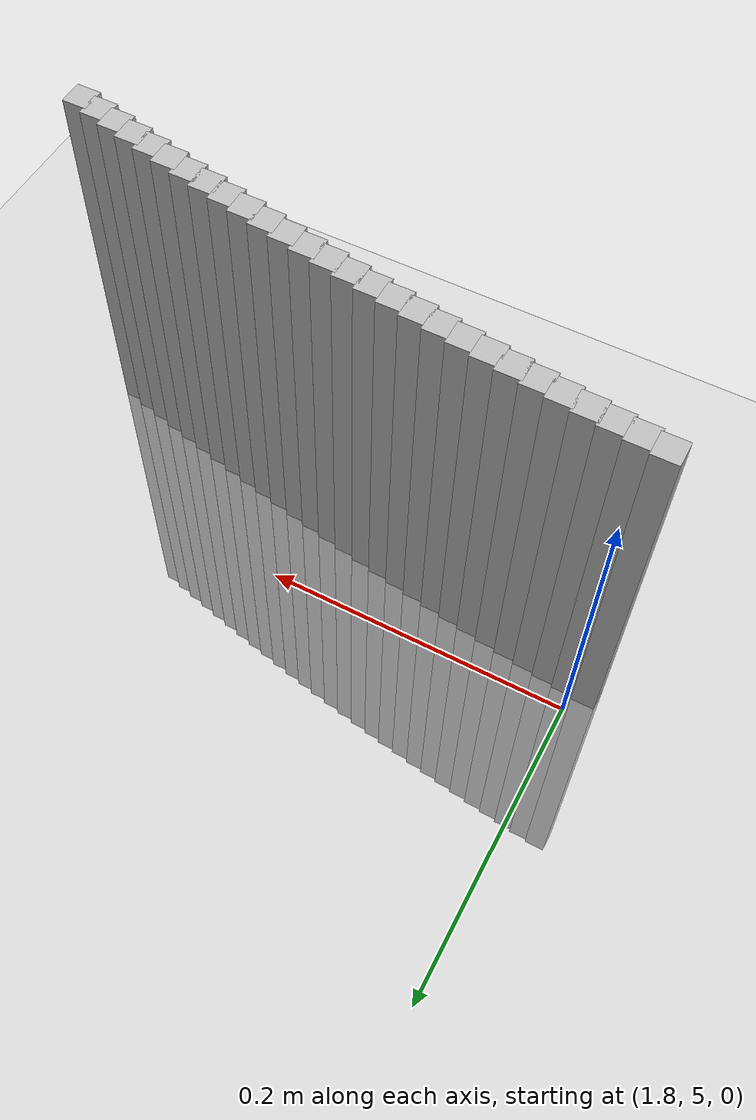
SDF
<sdf version="1.6">
 <world name="base">
  <model name="ground_plane">
   <static>1</static>
   <link name="link">
    <collision name="collision">
     <geometry><plane><normal>0 0 1</normal><size>100 100</size></plane></geometry>
     <surface>
      <contact><collide_bitmask>65535</collide_bitmask></contact>
      <friction><ode><mu>100</mu><mu2>50</mu2></ode></friction>
     </surface>
    </collision>
    <visual name="visual">
     <cast_shadows>0</cast_shadows>
     <geometry><plane><normal>0 0 1</normal><size>100 100</size></plane></geometry>
     <material>
      <script><uri>file://media/materials/scripts/gazebo.material</uri><name>Gazebo/Grey</name></script>
     </material>
    </visual>
   </link>
  </model>
  <model name="k404">
   <link name="29_link">
    <collision name="collision_29">
     <pose>1.791 4.98301 0 0 -0 0</pose>
     <geometry><box><size>0.015 0.015 0.5</size></box></geometry>
    </collision>
    <visual name="visual_29">
     <pose>1.791 4.98301 0 0 -0 0</pose>
     <geometry><box><size>0.015 0.015 0.5</size></box></geometry>
    </visual>
   </link>
   <link name="30_link">
    <collision name="collision_30">
     <pose>1.80479 4.98135 0 0 -0 0</pose>
     <geometry><box><size>0.015 0.015 0.5</size></box></geometry>
    </collision>
    <visual name="visual_30">
     <pose>1.80479 4.98135 0 0 -0 0</pose>
     <geometry><box><size>0.015 0.015 0.5</size></box></geometry>
    </visual>
   </link>
   <link name="31_link">
    <collision name="collision_31">
     <pose>1.81858 4.97962 0 0 -0 0</pose>
     <geometry><box><size>0.015 0.015 0.5</size></box></geometry>
    </collision>
    <visual name="visual_31">
     <pose>1.81858 4.97962 0 0 -0 0</pose>
     <geometry><box><size>0.015 0.015 0.5</size></box></geometry>
    </visual>
   </link>
   <link name="32_link">
    <collision name="collision_32">
     <pose>1.83235 4.97781 0 0 -0 0</pose>
     <geometry><box><size>0.015 0.015 0.5</size></box></geometry>
    </collision>
    <visual name="visual_32">
     <pose>1.83235 4.97781 0 0 -0 0</pose>
     <geometry><box><size>0.015 0.015 0.5</size></box></geometry>
    </visual>
   </link>
   <link name="33_link">
    <collision name="collision_33">
     <pose>1.84611 4.97593 0 0 -0 0</pose>
     <geometry><box><size>0.015 0.015 0.5</size></box></geometry>
    </collision>
    <visual name="visual_33">
     <pose>1.84611 4.97593 0 0 -0 0</pose>
     <geometry><box><size>0.015 0.015 0.5</size></box></geometry>
    </visual>
   </link>
   <link name="34_link">
    <collision name="collision_34">
     <pose>1.85986 4.97396 0 0 -0 0</pose>
     <geometry><box><size>0.015 0.015 0.5</size></box></geometry>
    </collision>
    <visual name="visual_34">
     <pose>1.85986 4.97396 0 0 -0 0</pose>
     <geometry><box><size>0.015 0.015 0.5</size></box></geometry>
    </visual>
   </link>
   <link name="35_link">
    <collision name="collision_35">
     <pose>1.87359 4.97193 0 0 -0 0</pose>
     <geometry><box><size>0.015 0.015 0.5</size></box></geometry>
    </collision>
    <visual name="visual_35">
     <pose>1.87359 4.97193 0 0 -0 0</pose>
     <geometry><box><size>0.015 0.015 0.5</size></box></geometry>
    </visual>
   </link>
   <link name="36_link">
    <collision name="collision_36">
     <pose>1.88732 4.96981 0 0 -0 0</pose>
     <geometry><box><size>0.015 0.015 0.5</size></box></geometry>
    </collision>
    <visual name="visual_36">
     <pose>1.88732 4.96981 0 0 -0 0</pose>
     <geometry><box><size>0.015 0.015 0.5</size></box></geometry>
    </visual>
   </link>
   <link name="37_link">
    <collision name="collision_37">
     <pose>1.90104 4.96762 0 0 -0 0</pose>
     <geometry><box><size>0.015 0.015 0.5</size></box></geometry>
    </collision>
    <visual name="visual_37">
     <pose>1.90104 4.96762 0 0 -0 0</pose>
     <geometry><box><size>0.015 0.015 0.5</size></box></geometry>
    </visual>
   </link>
   <link name="38_link">
    <collision name="collision_38">
     <pose>1.91474 4.96536 0 0 -0 0</pose>
     <geometry><box><size>0.015 0.015 0.5</size></box></geometry>
    </collision>
    <visual name="visual_38">
     <pose>1.91474 4.96536 0 0 -0 0</pose>
     <geometry><box><size>0.015 0.015 0.5</size></box></geometry>
    </visual>
   </link>
   <link name="39_link">
    <collision name="collision_39">
     <pose>1.92843 4.96302 0 0 -0 0</pose>
     <geometry><box><size>0.015 0.015 0.5</size></box></geometry>
    </collision>
    <visual name="visual_39">
     <pose>1.92843 4.96302 0 0 -0 0</pose>
     <geometry><box><size>0.015 0.015 0.5</size></box></geometry>
    </visual>
   </link>
   <link name="40_link">
    <collision name="collision_40">
     <pose>1.94211 4.9606 0 0 -0 0</pose>
     <geometry><box><size>0.015 0.015 0.5</size></box></geometry>
    </collision>
    <visual name="visual_40">
     <pose>1.94211 4.9606 0 0 -0 0</pose>
     <geometry><box><size>0.015 0.015 0.5</size></box></geometry>
    </visual>
   </link>
   <link name="41_link">
    <collision name="collision_41">
     <pose>1.95577 4.9581 0 0 -0 0</pose>
     <geometry><box><size>0.015 0.015 0.5</size></box></geometry>
    </collision>
    <visual name="visual_41">
     <pose>1.95577 4.9581 0 0 -0 0</pose>
     <geometry><box><size>0.015 0.015 0.5</size></box></geometry>
    </visual>
   </link>
   <link name="42_link">
    <collision name="collision_42">
     <pose>1.96942 4.95553 0 0 -0 0</pose>
     <geometry><box><size>0.015 0.015 0.5</size></box></geometry>
    </collision>
    <visual name="visual_42">
     <pose>1.96942 4.95553 0 0 -0 0</pose>
     <geometry><box><size>0.015 0.015 0.5</size></box></geometry>
    </visual>
   </link>
   <link name="43_link">
    <collision name="collision_43">
     <pose>1.98305 4.95289 0 0 -0 0</pose>
     <geometry><box><size>0.015 0.015 0.5</size></box></geometry>
    </collision>
    <visual name="visual_43">
     <pose>1.98305 4.95289 0 0 -0 0</pose>
     <geometry><box><size>0.015 0.015 0.5</size></box></geometry>
    </visual>
   </link>
   <link name="44_link">
    <collision name="collision_44">
     <pose>1.99667 4.95017 0 0 -0 0</pose>
     <geometry><box><size>0.015 0.015 0.5</size></box></geometry>
    </collision>
    <visual name="visual_44">
     <pose>1.99667 4.95017 0 0 -0 0</pose>
     <geometry><box><size>0.015 0.015 0.5</size></box></geometry>
    </visual>
   </link>
   <link name="45_link">
    <collision name="collision_45">
     <pose>2.01028 4.94737 0 0 -0 0</pose>
     <geometry><box><size>0.015 0.015 0.5</size></box></geometry>
    </collision>
    <visual name="visual_45">
     <pose>2.01028 4.94737 0 0 -0 0</pose>
     <geometry><box><size>0.015 0.015 0.5</size></box></geometry>
    </visual>
   </link>
   <link name="46_link">
    <collision name="collision_46">
     <pose>2.02387 4.9445 0 0 -0 0</pose>
     <geometry><box><size>0.015 0.015 0.5</size></box></geometry>
    </collision>
    <visual name="visual_46">
     <pose>2.02387 4.9445 0 0 -0 0</pose>
     <geometry><box><size>0.015 0.015 0.5</size></box></geometry>
    </visual>
   </link>
   <link name="47_link">
    <collision name="collision_47">
     <pose>2.03744 4.94155 0 0 -0 0</pose>
     <geometry><box><size>0.015 0.015 0.5</size></box></geometry>
    </collision>
    <visual name="visual_47">
     <pose>2.03744 4.94155 0 0 -0 0</pose>
     <geometry><box><size>0.015 0.015 0.5</size></box></geometry>
    </visual>
   </link>
   <link name="48_link">
    <collision name="collision_48">
     <pose>2.05099 4.93853 0 0 -0 0</pose>
     <geometry><box><size>0.015 0.015 0.5</size></box></geometry>
    </collision>
    <visual name="visual_48">
     <pose>2.05099 4.93853 0 0 -0 0</pose>
     <geometry><box><size>0.015 0.015 0.5</size></box></geometry>
    </visual>
   </link>
   <link name="49_link">
    <collision name="collision_49">
     <pose>2.06453 4.93543 0 0 -0 0</pose>
     <geometry><box><size>0.015 0.015 0.5</size></box></geometry>
    </collision>
    <visual name="visual_49">
     <pose>2.06453 4.93543 0 0 -0 0</pose>
     <geometry><box><size>0.015 0.015 0.5</size></box></geometry>
    </visual>
   </link>
   <link name="50_link">
    <collision name="collision_50">
     <pose>2.07805 4.93225 0 0 -0 0</pose>
     <geometry><box><size>0.015 0.015 0.5</size></box></geometry>
    </collision>
    <visual name="visual_50">
     <pose>2.07805 4.93225 0 0 -0 0</pose>
     <geometry><box><size>0.015 0.015 0.5</size></box></geometry>
    </visual>
   </link>
   <link name="51_link">
    <collision name="collision_51">
     <pose>2.09156 4.929 0 0 -0 0</pose>
     <geometry><box><size>0.015 0.015 0.5</size></box></geometry>
    </collision>
    <visual name="visual_51">
     <pose>2.09156 4.929 0 0 -0 0</pose>
     <geometry><box><size>0.015 0.015 0.5</size></box></geometry>
    </visual>
   </link>
   <link name="52_link">
    <collision name="collision_52">
     <pose>2.10504 4.92568 0 0 -0 0</pose>
     <geometry><box><size>0.015 0.015 0.5</size></box></geometry>
    </collision>
    <visual name="visual_52">
     <pose>2.10504 4.92568 0 0 -0 0</pose>
     <geometry><box><size>0.015 0.015 0.5</size></box></geometry>
    </visual>
   </link>
   <link name="53_link">
    <collision name="collision_53">
     <pose>2.11851 4.92228 0 0 -0 0</pose>
     <geometry><box><size>0.015 0.015 0.5</size></box></geometry>
    </collision>
    <visual name="visual_53">
     <pose>2.11851 4.92228 0 0 -0 0</pose>
     <geometry><box><size>0.015 0.015 0.5</size></box></geometry>
    </visual>
   </link>
   <link name="54_link">
    <collision name="collision_54">
     <pose>2.13196 4.91881 0 0 -0 0</pose>
     <geometry><box><size>0.015 0.015 0.5</size></box></geometry>
    </collision>
    <visual name="visual_54">
     <pose>2.13196 4.91881 0 0 -0 0</pose>
     <geometry><box><size>0.015 0.015 0.5</size></box></geometry>
    </visual>
   </link>
   <link name="55_link">
    <collision name="collision_55">
     <pose>2.14539 4.91526 0 0 -0 0</pose>
     <geometry><box><size>0.015 0.015 0.5</size></box></geometry>
    </collision>
    <visual name="visual_55">
     <pose>2.14539 4.91526 0 0 -0 0</pose>
     <geometry><box><size>0.015 0.015 0.5</size></box></geometry>
    </visual>
   </link>
   <link name="56_link">
    <collision name="collision_56">
     <pose>2.15879 4.91164 0 0 -0 0</pose>
     <geometry><box><size>0.015 0.015 0.5</size></box></geometry>
    </collision>
    <visual name="visual_56">
     <pose>2.15879 4.91164 0 0 -0 0</pose>
     <geometry><box><size>0.015 0.015 0.5</size></box></geometry>
    </visual>
   </link>
   <static>1</static>
  </model>
 </world>
</sdf>
